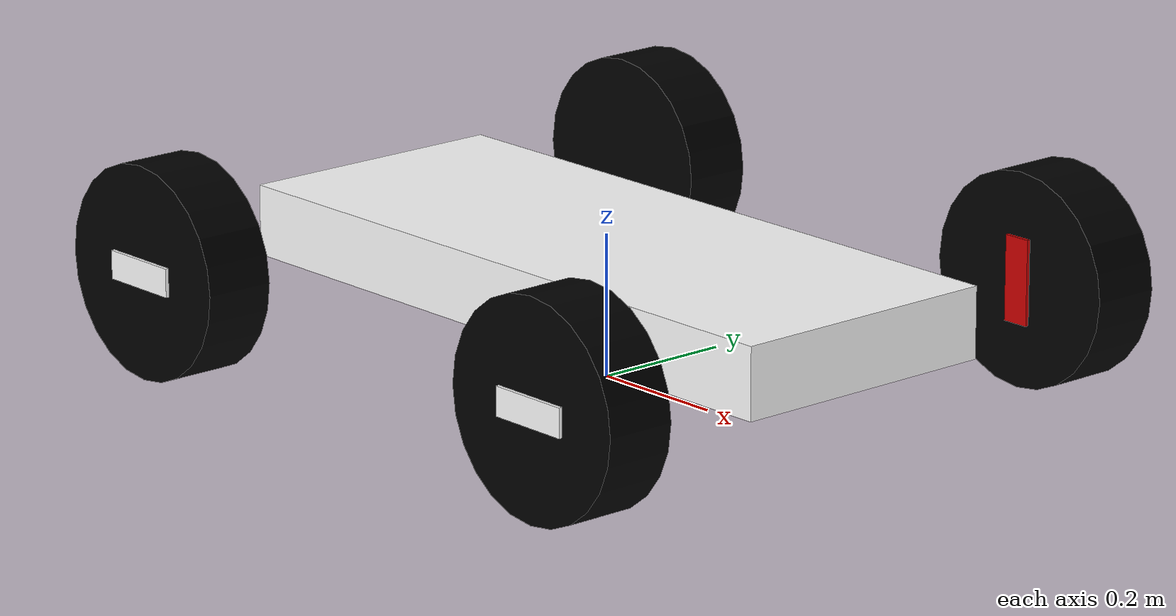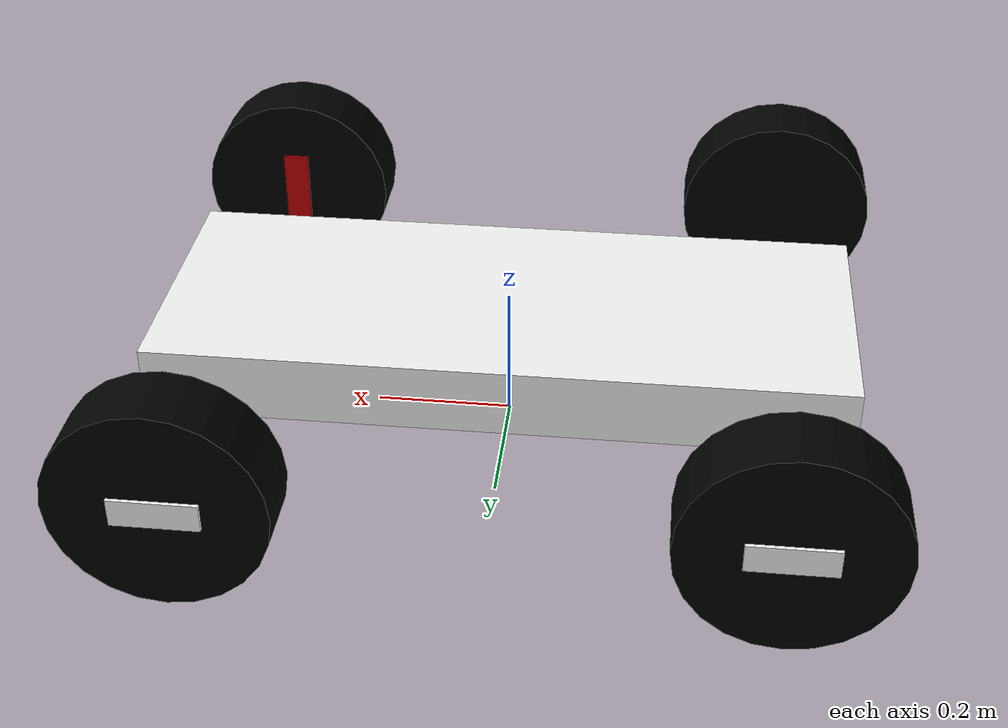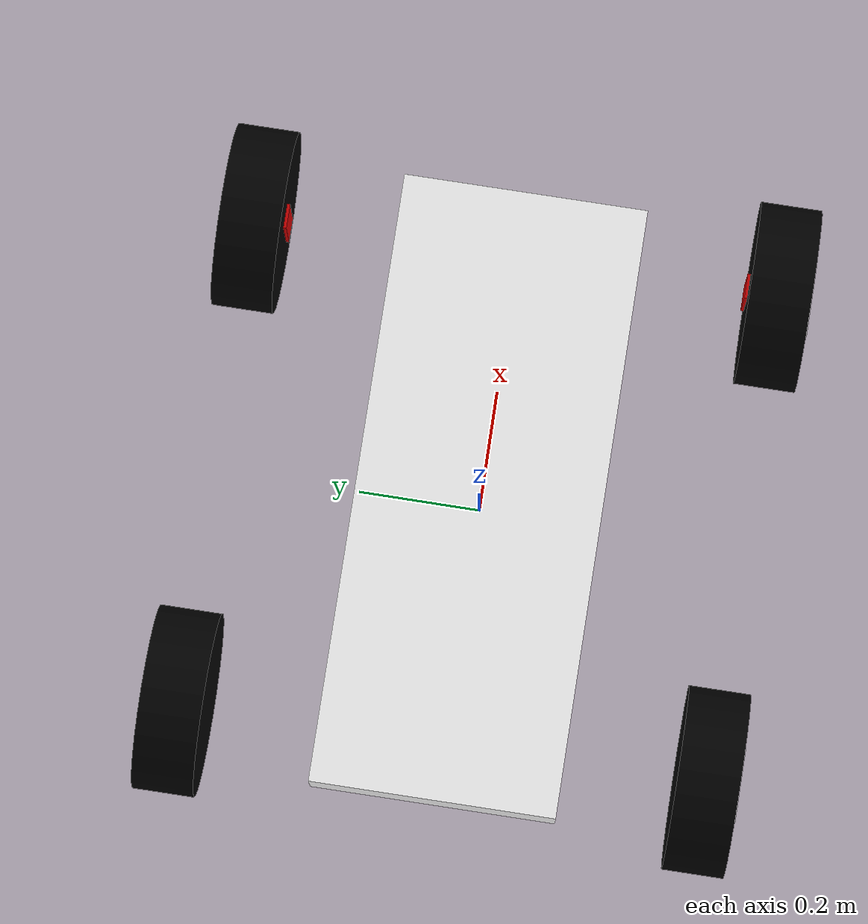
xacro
<?xml version="1.0"?>

<!-- Ackermann robot -->
<robot name="ackermann" xmlns:xacro="http://www.ros.org/wiki/xacro">

  <!-- Import all Gazebo-customization elements, including Gazebo colors -->
  <xacro:include filename="$(find ackermann_description)/urdf/ackermann.gazebo" />
  <!-- Import Rviz colors -->
  <xacro:include filename="$(find ackermann_description)/urdf/materials.xacro" />
  <!-- Import macros -->
  <xacro:include filename="$(find ackermann_description)/urdf/macros.xacro" />

  <!-- Geometric constants -->
  <xacro:property name="PI" value="3.1415926535897931"/>

  <!-- to avoid collision (wheels are floating) (TO PUT SPRINGS AFTER) -->
  <xacro:property name="offset_wheels" value="${wheelRadius+0.03}"/>
  <!-- Robot specifics -->

  <!-- base -->
  <xacro:property name="baseMass" value="100" />
  <xacro:property name="baseLength" value="1.2" />
  <xacro:property name="baseWidth" value="0.4" />
  <xacro:property name="baseHeight" value="0.1" />

  <!-- axles -->
  <xacro:property name="axleMass" value="5" />
  <xacro:property name="axleRadius" value="0.03" /> <!-- radius of cylinders-->
  <xacro:property name="axleLength" value="${baseWidth+2*(offset_wheels+wheelWidth/2)}" />
  <xacro:property name="baseLength" value="1" />

  <!-- suspension -->
  <xacro:property name="suspensionMass" value="1" />
  <xacro:property name="suspensionLength" value="0.04" />
  <xacro:property name="suspensionWidth" value="0.01" />
  <xacro:property name="suspensionHeight" value="${wheelRadius-0.03}" />

  <!-- wheels -->
  <xacro:property name="wheelMass" value="2.5" />
  <xacro:property name="wheelRadius" value="0.15" />
  <xacro:property name="wheelWidth" value="0.1" />
  <xacro:property name="wheelPos" value="0.1" />

  <!-- limits and parameters joints -->
  <xacro:property name="steerMin" value="${-PI/2}"/>
  <xacro:property name="steerMax" value="${PI/2}"/>
  <xacro:property name="effortMax" value="15"/>
  <xacro:property name="velocityMax" value="50" />

  <xacro:property name="steerDamping" value="200" />
  <xacro:property name="steerFriction" value="200" />
  <xacro:property name="wheelDamping" value="0.001" />
  <xacro:property name="wheelFriction" value="0.001" />

  <!-- base link-->

  <link name="base_link"> <!-- avoid mass errors-->

    <visual>
      <origin rpy="0 0 0" xyz="0 0 0.001"/>
      <geometry>
        <box size="0.01 0.01 0.01"/>
      </geometry>
    </visual>

  </link>

  <joint name="base_foot_joint" type="fixed">
    <parent link="base_link"/>
    <child link="base_footprint"/>
  </joint>

  <link name="base_footprint">

    <visual>
      <geometry>
         <box size="${baseLength} ${baseWidth} ${baseHeight}"/>
      </geometry>
      <origin rpy="0 0 0 " xyz="0 0 ${wheelRadius}"/>
      <material name="white"/>
    </visual>

    <collision>
      <geometry>
         <box size="${baseLength} ${baseWidth} ${baseHeight}"/>
      </geometry>
      <origin rpy="0 0 0 " xyz="0 0 ${wheelRadius}"/>
     </collision>

     <inertial>
        <origin rpy="0 0 0 " xyz="0 0 ${wheelRadius}"/>
        <mass value="${baseMass}"/>
         <box_inertia m="${baseMass}" x="${baseLength}" y="${baseWidth}" z="${baseHeight}"/>
     </inertial>

  </link>

  <!-- rear wheels  -->
  <rear_wheel lr="left" tY="-1"/>
  <rear_wheel lr="right" tY="1"/>

  <!-- front wheels  -->
  <front_wheel lr ="left" tY="-1"/>
  <front_wheel lr ="right" tY="1"/>

</robot>

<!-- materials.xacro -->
<!-- HERE WE SPECIFY MATERIALS DESCRIPTION IN XACRO FORM -->
<robot>

  <material name="black">
    <color rgba="0.0 0.0 0.0 1.0"/>
  </material>

  <material name="blue">
    <color rgba="0.0 0.0 0.8 1.0"/>
  </material>

  <material name="green">
    <color rgba="0.0 0.8 0.0 1.0"/>
  </material>

  <material name="grey">
    <color rgba="0.2 0.2 0.2 1.0"/>
  </material>

  <material name="orange">
    <color rgba="${255/255} ${108/255} ${10/255} 1.0"/>
  </material>

  <material name="brown">
    <color rgba="${222/255} ${207/255} ${195/255} 1.0"/>
  </material>

  <material name="red">
    <color rgba="0.8 0.0 0.0 1.0"/>
  </material>

  <material name="white">
    <color rgba="1.0 1.0 1.0 1.0"/>
  </material>

</robot>

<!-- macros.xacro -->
<!-- HERE WE SPECIFY PARAMETERS AND MACROS IN XACRO FORM -->
<robot>

  <!-- intertial macros -->
  <macro name="cylinder_inertia" params="m r h">
    <inertia  ixx="${m*(3*r*r+h*h)/12}" ixy = "0" ixz = "0"
      iyy="${m*(3*r*r+h*h)/12}" iyz = "0"
      izz="${m*r*r/2}"/>
  </macro>

  <macro name="box_inertia" params="m x y z">
    <inertia  ixx="${m*(y*y+z*z)/12}" ixy = "0" ixz = "0"
      iyy="${m*(x*x+z*z)/12}" iyz = "0"
      izz="${m*(x*x+z*z)/12}"/>
  </macro>

  <macro name="sphere_inertia" params="m r">
    <inertia  ixx="${2*m*r*r/5}" ixy = "0" ixz = "0"
      iyy="${2*m*r*r/5}" iyz = "0"
      izz="${2*m*r*r/5}"/>
  </macro>

  <macro name="suspension_inertia">
    <inertial>
      <mass value="2"/>
      <inertia ixx="2" ixy="0" ixz="0" iyy="2" iyz="0" izz="2"/>
    </inertial>
  </macro>

  <macro name="dummy_inertia">
    <inertial>
      <mass value="0.001"/>
      <inertia ixx="0.001" ixy="0" ixz="0" iyy="0.001" iyz="0" izz="0.001"/>
    </inertial>
  </macro>

  <!-- rear wheels macro (link,joint,transmission,dummy link, fixed joint) -->
  <macro name="rear_wheel" params="lr tY">

   <link name="rear_${lr}_wheel_link">
    <collision>
      <origin xyz="0 0 0" rpy="0 ${PI/2} ${PI/2}" />
      <geometry>
        <cylinder length="${wheelWidth}" radius="${wheelRadius}"/>
      </geometry>
    </collision>

    <visual>
      <origin xyz="0 0 0" rpy="0 ${PI/2} ${PI/2}" />
      <geometry>
        <cylinder length="${wheelWidth}" radius="${wheelRadius}"/>
      </geometry>
      <material name="black"/>
    </visual>

    <inertial>
      <origin xyz="0 0 0" rpy="0 ${PI/2} ${PI/2}" />
      <mass value="${wheelMass}"/>
      <cylinder_inertia m="${wheelMass}" r="${wheelRadius}" h="${wheelWidth}"/>
    </inertial>
   </link>

   <joint name="rear_${lr}_wheel_joint" type="continuous">
    <parent link="base_footprint"/>
    <child link="rear_${lr}_wheel_link"/>
    <origin xyz="${wheelPos-baseLength/2} ${tY*(wheelWidth/2+baseWidth/2+offset_wheels)} ${wheelRadius}" rpy="0 0 0" />
    <axis xyz="0 1 0" rpy="0 0 0" />
    <joint_properties damping="${wheelDamping}" friction="${wheelFriction}"/>
   </joint>

   <transmission name="rear_${lr}_wheel_trans">
         <type>transmission_interface/SimpleTransmission</type>
         <joint name="rear_${lr}_wheel_joint">
           <hardwareInterface>hardware_interface/EffortJointInterface</hardwareInterface>
         </joint>
         <actuator name="rear_${lr}_motor">
           <hardwareInterface>hardware_interface/EffortJointInterface</hardwareInterface>
           <mechanicalReduction>300</mechanicalReduction>
         </actuator>
   </transmission>

   <!-- link attached to the wheels just to show rotation-->
   <link name="rear_${lr}_rot_link">
    <collision>
      <origin xyz="0 0 0" rpy="0 ${PI/2} 0" />
      <geometry>
        <box size="${suspensionLength} ${suspensionWidth} ${suspensionHeight}"/>
      </geometry>
    </collision>

    <visual>
      <origin xyz="0 0 0" rpy="0 ${PI/2} 0" />
      <geometry>
        <box size="${suspensionLength} ${suspensionWidth} ${suspensionHeight}"/>
      </geometry>
      <material name="white"/>
    </visual>

    <dummy_inertia/>

   </link>

   <joint name="rear_${lr}_rot_joint" type="fixed">
    <parent link="rear_${lr}_wheel_link"/>
    <child link="rear_${lr}_rot_link"/>
    <origin xyz="0 ${tY*wheelWidth/2} 0" rpy="0 0 0" />
   </joint>

  </macro>

  <!-- front wheels macro (link,revolute joint,transmission, wheel link,continuous joint,transmission) -->
  <macro name="front_wheel" params="lr tY">

    <link name="front_${lr}_steering_link">
     <collision>
       <origin xyz="0 0 0" rpy="0 0 0" />
       <geometry>
          <box size="${suspensionLength} ${suspensionWidth} ${suspensionHeight}"/>
       </geometry>
     </collision>

     <visual>
       <origin xyz="0 0 0" rpy="0 0 0" />
       <geometry>
         <box size="${suspensionLength} ${suspensionWidth} ${suspensionHeight}"/>
       </geometry>
       <material name="red"/>
     </visual>

     <suspension_inertia/>

    </link>

    <joint name="front_${lr}_steering_joint" type="revolute">
     <parent link="base_footprint"/>
     <child link="front_${lr}_steering_link"/>
     <origin xyz="${-wheelPos+baseLength/2} ${tY*(baseWidth/2+offset_wheels)} ${wheelRadius}" rpy="0 0 0" />
     <axis xyz="0 0 1" rpy="0 0 0" />
     <limit lower="${steerMin}" upper="${steerMax}" effort="${effortMax}" velocity="${velocityMax}"/>
     <joint_properties damping="${steerDamping}" friction="${steerFriction}"/>
    </joint>

    <transmission name="front_${lr}_steering_trans">
          <type>transmission_interface/SimpleTransmission</type>
          <joint name="front_${lr}_steering_joint">
            <hardwareInterface>hardware_interface/EffortJointInterface</hardwareInterface>
          </joint>
          <actuator name="front_${lr}_steering_motor">
            <hardwareInterface>hardware_interface/EffortJointInterface</hardwareInterface>
            <mechanicalReduction>300</mechanicalReduction>
          </actuator>
    </transmission>

    <link name="front_${lr}_wheel_link">
     <collision>
       <origin xyz="0 0 0" rpy="0 ${PI/2} ${PI/2}" />
       <geometry>
         <cylinder length="${wheelWidth}" radius="${wheelRadius}"/>
       </geometry>
     </collision>

     <visual>
       <origin xyz="0 0 0" rpy="0 ${PI/2} ${PI/2}" />
       <geometry>
         <cylinder length="${wheelWidth}" radius="${wheelRadius}"/>
       </geometry>
       <material name="black"/>
     </visual>

     <inertial>
       <origin xyz="0 0 0" rpy="0 ${PI/2} ${PI/2}" />
       <mass value="${wheelMass}"/>
       <cylinder_inertia m="${wheelMass}" r="${wheelRadius}" h="${wheelWidth}"/>
     </inertial>
    </link>

    <joint name="front_${lr}_wheel_joint" type="continuous">
     <parent link="front_${lr}_steering_link"/>
     <child link="front_${lr}_wheel_link"/>
     <origin xyz="0 ${tY*wheelWidth/2} 0" rpy="0 0 0" />
     <axis xyz="0 1 0" rpy="0 0 0" />
     <joint_properties damping="${wheelDamping}" friction="${wheelFriction}"/>
    </joint>

    <transmission name="front_${lr}_wheel_trans">
          <type>transmission_interface/SimpleTransmission</type>
          <joint name="front_${lr}_wheel_joint">
            <hardwareInterface>hardware_interface/EffortJointInterface</hardwareInterface>
          </joint>
          <actuator name="front_${lr}_motor">
            <hardwareInterface>hardware_interface/EffortJointInterface</hardwareInterface>
            <mechanicalReduction>300</mechanicalReduction>
          </actuator>
    </transmission>

    <!-- link attached to the wheels just to show rotation-->
    <link name="front_${lr}_rot_link">
     <collision>
       <origin xyz="0 0 0" rpy="0 ${PI/2} 0" />
       <geometry>
         <box size="${suspensionLength} ${suspensionWidth} ${suspensionHeight}"/>
       </geometry>
     </collision>

     <visual>
       <origin xyz="0 0 0" rpy="0 ${PI/2} 0" />
       <geometry>
         <box size="${suspensionLength} ${suspensionWidth} ${suspensionHeight}"/>
       </geometry>
       <material name="white"/>
     </visual>

     <dummy_inertia/>

    </link>

    <joint name="front_${lr}_rot_joint" type="fixed">
     <parent link="front_${lr}_wheel_link"/>
     <child link="front_${lr}_rot_link"/>
     <origin xyz="0 ${tY*wheelWidth/2} 0" rpy="0 0 0" />
    </joint>

  </macro>

</robot>
